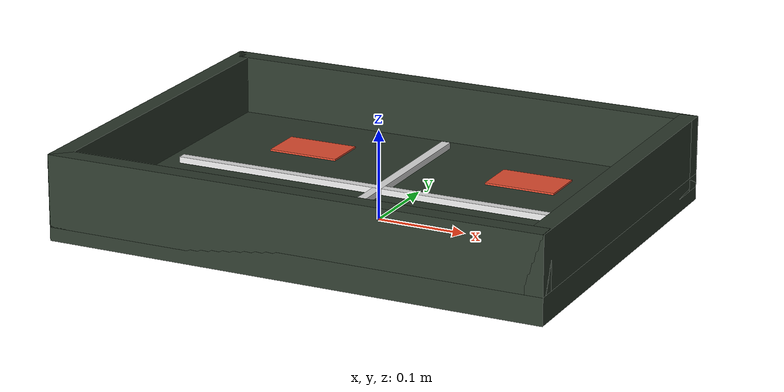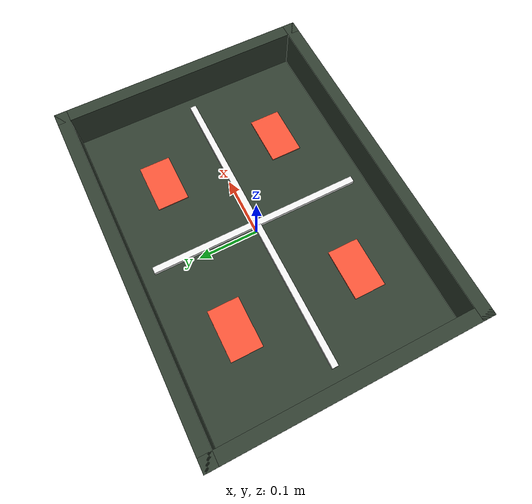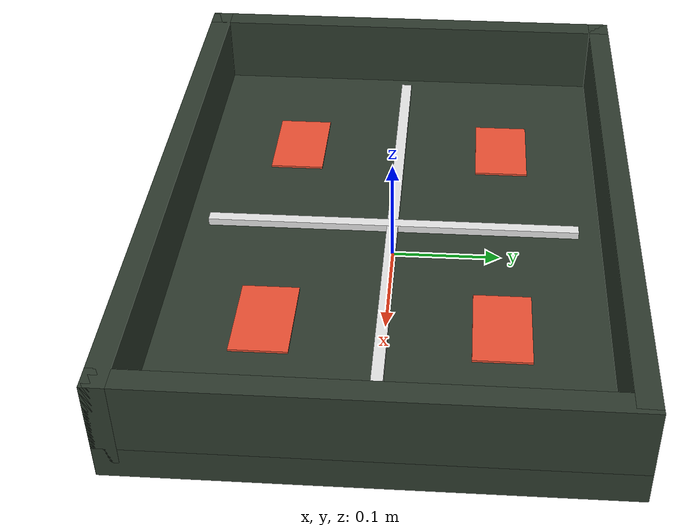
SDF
<?xml version="1.0"?>
<sdf version="1.6">
  <model name="kitting_tray">
    <static>true</static>
    <link name="tray">
      <collision name="base_collision">
        <pose>0 0 0.015 0 0 0</pose>
        <geometry>
          <box>
            <size>0.56 0.42 0.03</size>
          </box>
        </geometry>
      </collision>
      <collision name="wall_left_collision">
        <pose>0.27 0 0.055 0 0 0</pose>
        <geometry>
          <box>
            <size>0.02 0.42 0.08</size>
          </box>
        </geometry>
      </collision>
      <collision name="wall_right_collision">
        <pose>-0.27 0 0.055 0 0 0</pose>
        <geometry>
          <box>
            <size>0.02 0.42 0.08</size>
          </box>
        </geometry>
      </collision>
      <collision name="wall_front_collision">
        <pose>0 0.20 0.055 0 0 0</pose>
        <geometry>
          <box>
            <size>0.56 0.02 0.08</size>
          </box>
        </geometry>
      </collision>
      <collision name="wall_back_collision">
        <pose>0 -0.20 0.055 0 0 0</pose>
        <geometry>
          <box>
            <size>0.56 0.02 0.08</size>
          </box>
        </geometry>
      </collision>
      <visual name="base_visual">
        <pose>0 0 0.015 0 0 0</pose>
        <geometry>
          <box>
            <size>0.56 0.42 0.03</size>
          </box>
        </geometry>
        <material>
          <ambient>0.14 0.18 0.14 1</ambient>
          <diffuse>0.18 0.23 0.18 1</diffuse>
        </material>
      </visual>
      <visual name="wall_left_visual">
        <pose>0.27 0 0.055 0 0 0</pose>
        <geometry>
          <box>
            <size>0.02 0.42 0.08</size>
          </box>
        </geometry>
        <material>
          <ambient>0.14 0.18 0.14 1</ambient>
          <diffuse>0.18 0.23 0.18 1</diffuse>
        </material>
      </visual>
      <visual name="wall_right_visual">
        <pose>-0.27 0 0.055 0 0 0</pose>
        <geometry>
          <box>
            <size>0.02 0.42 0.08</size>
          </box>
        </geometry>
        <material>
          <ambient>0.14 0.18 0.14 1</ambient>
          <diffuse>0.18 0.23 0.18 1</diffuse>
        </material>
      </visual>
      <visual name="wall_front_visual">
        <pose>0 0.20 0.055 0 0 0</pose>
        <geometry>
          <box>
            <size>0.56 0.02 0.08</size>
          </box>
        </geometry>
        <material>
          <ambient>0.14 0.18 0.14 1</ambient>
          <diffuse>0.18 0.23 0.18 1</diffuse>
        </material>
      </visual>
      <visual name="wall_back_visual">
        <pose>0 -0.20 0.055 0 0 0</pose>
        <geometry>
          <box>
            <size>0.56 0.02 0.08</size>
          </box>
        </geometry>
        <material>
          <ambient>0.14 0.18 0.14 1</ambient>
          <diffuse>0.18 0.23 0.18 1</diffuse>
        </material>
      </visual>
      <visual name="divider_x">
        <pose>0 0 0.032 0 0 0</pose>
        <geometry>
          <box>
            <size>0.01 0.34 0.01</size>
          </box>
        </geometry>
        <material>
          <ambient>0.84 0.84 0.84 1</ambient>
          <diffuse>0.90 0.90 0.90 1</diffuse>
        </material>
      </visual>
      <visual name="divider_y">
        <pose>0 0 0.032 0 0 0</pose>
        <geometry>
          <box>
            <size>0.48 0.01 0.01</size>
          </box>
        </geometry>
        <material>
          <ambient>0.84 0.84 0.84 1</ambient>
          <diffuse>0.90 0.90 0.90 1</diffuse>
        </material>
      </visual>
      <visual name="target_marker_a">
        <pose>0.13 0.10 0.031 0 0 0</pose>
        <geometry>
          <box>
            <size>0.08 0.05 0.002</size>
          </box>
        </geometry>
        <material>
          <ambient>0.86 0.26 0.18 1</ambient>
          <diffuse>0.92 0.31 0.20 1</diffuse>
        </material>
      </visual>
      <visual name="target_marker_b">
        <pose>-0.13 0.10 0.031 0 0 0</pose>
        <geometry>
          <box>
            <size>0.08 0.05 0.002</size>
          </box>
        </geometry>
        <material>
          <ambient>0.86 0.26 0.18 1</ambient>
          <diffuse>0.92 0.31 0.20 1</diffuse>
        </material>
      </visual>
      <visual name="target_marker_c">
        <pose>0.13 -0.10 0.031 0 0 0</pose>
        <geometry>
          <box>
            <size>0.08 0.05 0.002</size>
          </box>
        </geometry>
        <material>
          <ambient>0.86 0.26 0.18 1</ambient>
          <diffuse>0.92 0.31 0.20 1</diffuse>
        </material>
      </visual>
      <visual name="target_marker_d">
        <pose>-0.13 -0.10 0.031 0 0 0</pose>
        <geometry>
          <box>
            <size>0.08 0.05 0.002</size>
          </box>
        </geometry>
        <material>
          <ambient>0.86 0.26 0.18 1</ambient>
          <diffuse>0.92 0.31 0.20 1</diffuse>
        </material>
      </visual>
    </link>
  </model>
</sdf>
